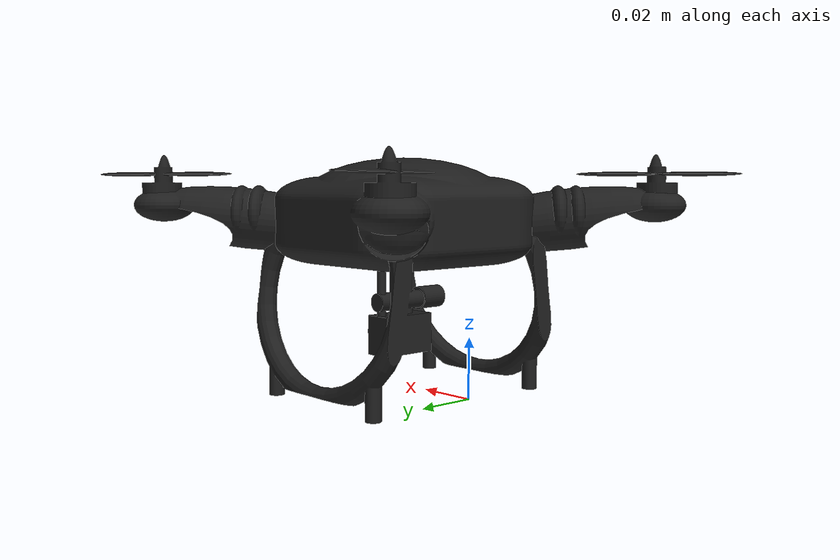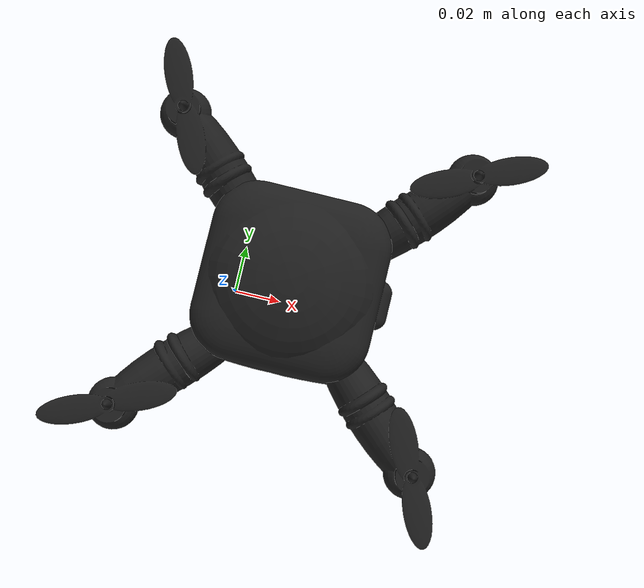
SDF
<?xml version='1.0'?>
<sdf version='1.6'>
  <model name='drone'>
    <link name='base_link'>
      <pose frame=''>0 0 0 0 -0 0</pose>
      <inertial>
        <pose frame=''>-0.000215 -0.009735 0.040907 0 -0 1.57</pose>
        <mass>0.39563</mass>
        <inertia>
          <ixx>0.00084919</ixx>
          <ixy>-4.3943e-06</ixy>
          <ixz>2.0367e-10</ixz>
          <iyy>0.00069336</iyy>
          <iyz>-3.0121e-06</iyz>
          <izz>0.0014819</izz>
        </inertia>
      </inertial>
      <self_collide>0</self_collide>
      <enable_wind>0</enable_wind>
      <kinematic>0</kinematic>
      <collision name='base_link_collision'>
        <pose frame=''>0 0 0 0 -0 1.57</pose>
        <geometry>
          <mesh>
            <scale>0.001 0.001 0.001</scale>
            <uri>model://drone/meshes/base_link4.stl</uri>
          </mesh>
        </geometry>
        <surface>
          <friction>
            <ode>
              <mu>1</mu>
              <mu2>1</mu2>
              <fdir1>0 0 0</fdir1>
              <slip1>0</slip1>
              <slip2>0</slip2>
            </ode>
            <torsional>
              <coefficient>1</coefficient>
              <patch_radius>0</patch_radius>
              <surface_radius>0</surface_radius>
              <use_patch_radius>1</use_patch_radius>
              <ode>
                <slip>0</slip>
              </ode>
            </torsional>
          </friction>
          <bounce>
            <restitution_coefficient>0</restitution_coefficient>
            <threshold>1e+06</threshold>
          </bounce>
          <contact>
            <collide_without_contact>0</collide_without_contact>
            <collide_without_contact_bitmask>1</collide_without_contact_bitmask>
            <collide_bitmask>1</collide_bitmask>
            <ode>
              <soft_cfm>0</soft_cfm>
              <soft_erp>0.2</soft_erp>
              <kp>1e+13</kp>
              <kd>1</kd>
              <max_vel>0.01</max_vel>
              <min_depth>0</min_depth>
            </ode>
            <bullet>
              <split_impulse>1</split_impulse>
              <split_impulse_penetration_threshold>-0.01</split_impulse_penetration_threshold>
              <soft_cfm>0</soft_cfm>
              <soft_erp>0.2</soft_erp>
              <kp>1e+13</kp>
              <kd>1</kd>
            </bullet>
          </contact>
        </surface>
      </collision>
      <visual name='base_link_visual'>
        <pose frame=''>0 0 0 0 -0 1.57</pose>
        <geometry>
          <mesh>
            <scale>0.001 0.001 0.001</scale>
            <uri>model://drone/meshes/base_link4.stl</uri>
          </mesh>
        </geometry>
        <material>
          <script>
            <name>Gazebo/Black</name>
          </script>
        </material>
        <transparency>0</transparency>
        <cast_shadows>1</cast_shadows>
      </visual>
    </link>
    <static>1</static>
    <allow_auto_disable>1</allow_auto_disable>
  </model>

</sdf>
